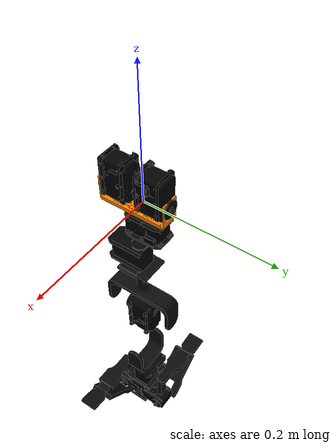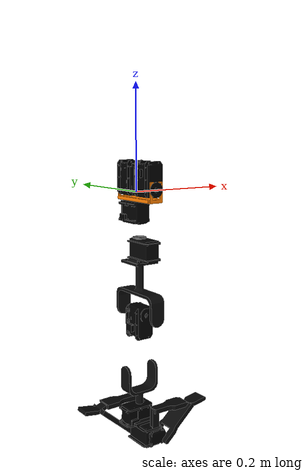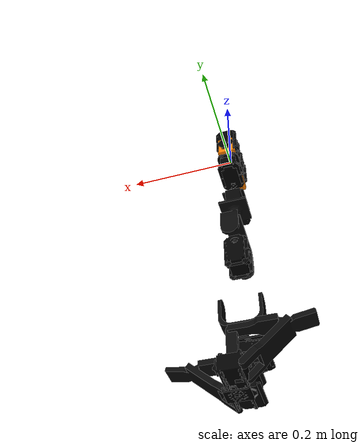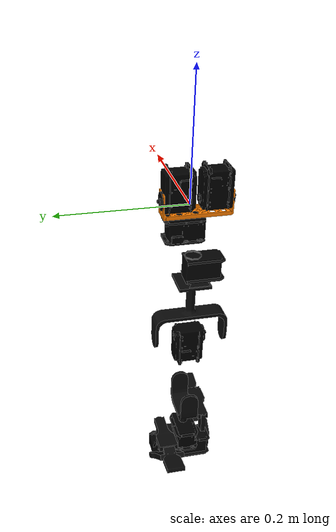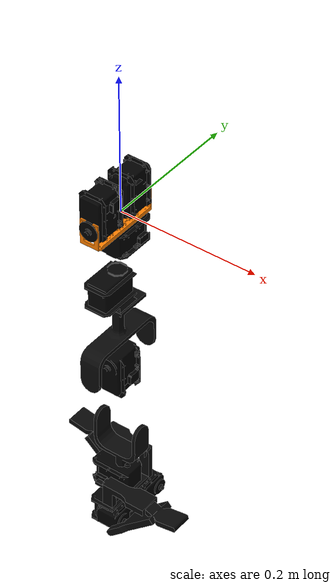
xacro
<?xml version="1.0"?>
<robot name="justina_right_arm" xmlns:xacro="http://www.ros.org/wiki/xacro">
  <!--xacro:include filename="$(find justina_description)/urdf/justina/components/justina_right_arm.gazebo"/-->

  <!-- RIGHT ARM LINKS -->
  <link name="shoulders_right_link">
    <visual>
      <origin xyz="0 -0.01 0.02" rpy = "0 3.1415 0"/>
      <geometry>
        <mesh filename="package://justina_description/meshes/justina/servos/Mx106-2.dae"/>
      </geometry>
    </visual>
    <collision>
      <origin xyz="0 -0.01 0.02" rpy = "0 3.1415 0"/>
      <geometry>
        <mesh filename="package://justina_description/meshes/justina/servos/Mx106-2.dae"/>
      </geometry>
    </collision>
    <inertial>
      <origin xyz="0 -0.01 0.02" rpy = "0 0 0"/>
      <mass value="0.125"/>
      <inertia
        ixx="0.0015" ixy="0.0" ixz="0.0"
        iyy="0.002175" iyz="0.0"
        izz="0.003075"/>
    </inertial>
  </link>

  <link name="shoulder_frame">
    <visual>
      <origin xyz="0 -0.01 0.01" rpy="0 0 -1.5707"/>
      <geometry>
       <mesh filename="package://justina_description/meshes/justina/arm/shoulder_frame.dae"/>
      </geometry>
      <material name = "la_material"><color rgba="1.0 0.5 0 1"/></material>
    </visual>
    <collision>
      <origin xyz="0 -0.01 0.01" rpy="0 0 -1.5707"/>
      <geometry>
       <mesh filename="package://justina_description/meshes/justina/arm/shoulder_frame.dae"/>
      </geometry>
    </collision>
    <inertial>
      <origin xyz="0 -0.01 0.01" rpy = "0 0 -1.5707"/>
      <mass value="0.08146"/>
      <inertia
        ixx="0.0000813217" ixy="0.0" ixz="0.0"
        iyy="0.000196" iyz="0.0"
        izz="0.0001282"/>
    </inertial>
  </link>

  <link name="arm">
    <visual>
      <origin xyz="0 0 -0.02" rpy="0 0 3.1416"/>
      <geometry>
       <mesh filename="package://justina_description/meshes/justina/servos/Mx64.dae"/>
      </geometry>
    </visual>
    <visual>
      <origin xyz="0 0 -0.216" rpy="0 3.1416 -1.5707"/>
      <geometry>
       <mesh filename="package://justina_description/meshes/justina/arm/arm.dae"/>
      </geometry>
    </visual>
    <collision>
      <origin xyz="0 0 -0.02" rpy="0 0 3.1416"/>
      <geometry>
       <mesh filename="package://justina_description/meshes/justina/servos/Mx64.dae"/>
      </geometry>
    </collision>
    <collision>
      <origin xyz="0 0 -0.216" rpy="0 3.1416 -1.5707"/>
      <geometry>
       <mesh filename="package://justina_description/meshes/justina/arm/arm.dae"/>
      </geometry>
    </collision>
    <inertial>
      <origin xyz="0 0 0" rpy = "0 0 0"/>
      <mass value="0.155"/>
      <inertia
        ixx="0.0015" ixy="0.0" ixz="0.0"
        iyy="0.002175" iyz="0.0"
        izz="0.003075"/>
    </inertial>
  </link>

  <link name="forearm">
    <visual>
      <origin xyz="0 0 0" rpy="1.5707 0 0"/>
      <geometry>
       <mesh filename="package://justina_description/meshes/justina/servos/Mx106.dae"/>
      </geometry>
    </visual>
    <visual>
      <origin xyz="0 0 -0.12" rpy="0 0 1.5707"/>
      <geometry>
       <mesh filename="package://justina_description/meshes/justina/arm/forearm.dae"/>
      </geometry>
    </visual>
    <visual>
      <origin xyz="0.009 0.001 -0.21" rpy="0 0 -1.5707"/>
      <geometry>
       <mesh filename="package://justina_description/meshes/justina/servos/Mx64.dae"/>
      </geometry>
    </visual>
    <collision>
      <origin xyz="0 0 0" rpy="0 0 0"/>
      <geometry>
       <mesh filename="package://justina_description/meshes/justina/servos/Mx106.dae"/>
      </geometry>
    </collision>
    <collision>
      <origin xyz="0 0 -0.12" rpy="0 0 1.5707"/>
      <geometry>
       <mesh filename="package://justina_description/meshes/justina/arm/forearm.dae"/>
      </geometry>
    </collision>
    <collision>
      <origin xyz="0.009 0.001 -0.21" rpy="0 0 -1.5707"/>
      <geometry>
       <mesh filename="package://justina_description/meshes/justina/servos/Mx64.dae"/>
      </geometry>
    </collision>
    <inertial>
      <origin xyz="0 0 0" rpy = "0 0 0"/>
      <mass value="0.155"/>
      <inertia
        ixx="0.0015" ixy="0.0" ixz="0.0"
        iyy="0.002175" iyz="0.0"
        izz="0.003075"/>
    </inertial>
  </link>

  <link name="gripper_motors">
    <visual>
      <origin xyz="0 -0.004 0" rpy="1.5707 -1.5707 0"/>
      <geometry>
        <mesh filename="package://justina_description/meshes/justina/servos/Mx28-2.dae"/>
      </geometry>
    </visual>
    <collision>
      <origin xyz="0 -0.004 0" rpy="1.5707 -1.5707 0"/>
      <geometry>
        <mesh filename="package://justina_description/meshes/justina/servos/Mx28-2.dae"/>
      </geometry>
    </collision>
    <inertial>
      <origin xyz="0 0 0" rpy = "0 0 0"/>
      <mass value="0.155"/>
      <inertia
        ixx="0.0015" ixy="0.0" ixz="0.0"
        iyy="0.002175" iyz="0.0"
        izz="0.003075"/>
    </inertial>
  </link>

    <link name="right_jaw">
    <visual>
      <origin xyz="0 0 0" rpy="0 1.5707 3.1416"/>
      <geometry>
        <mesh filename="package://justina_description/meshes/justina/arm/gripper.dae"/>
      </geometry>
    </visual>
    <collision>
      <origin xyz="0 0 0" rpy="0 1.5707 3.1416"/>
      <geometry>
        <mesh filename="package://justina_description/meshes/justina/arm/gripper.dae"/>
      </geometry>
    </collision>
    <inertial>
      <origin xyz="0 0 0" rpy = "0 0 0"/>
      <mass value="0.155"/>
      <inertia
        ixx="0.0015" ixy="0.0" ixz="0.0"
        iyy="0.002175" iyz="0.0"
        izz="0.003075"/>
    </inertial>
  </link>

    <link name="left_jaw">
    <visual>
      <origin xyz="0 0 0" rpy="0 1.5707 0"/>
      <geometry>
        <mesh filename="package://justina_description/meshes/justina/arm/gripper.dae"/>
      </geometry>
    </visual>
    <collision>
      <origin xyz="0 0 0" rpy="0 0 0"/>
      <geometry>
        <mesh filename="package://justina_description/meshes/justina/arm/gripper.dae"/>
      </geometry>
    </collision>
    <inertial>
      <origin xyz="0 0 0" rpy = "0 0 0"/>
      <mass value="0.155"/>
      <inertia
        ixx="0.0015" ixy="0.0" ixz="0.0"
        iyy="0.002175" iyz="0.0"
        izz="0.003075"/>
    </inertial>
  </link>

  <link name="right_arm_grip"/>

  <!-- RIGHT ARM JOINTS -->
  <joint name="torso_shoulder" type="revolute">
    <origin xyz="0 0 0.01" rpy="0 0 0"/>
    <parent link="shoulders_right_link"/>
    <child link="shoulder_frame"/>
    <axis xyz="0 -1 0" />
    <dynamics damping ="0.1" />
    <limit effort="16.0" velocity="3.0" lower="-1.7" upper="1.7"/>
  </joint>

  <joint name="shoulder_arm_motor" type="revolute">
    <origin xyz="0 -0.009 -0.028" rpy="0 0 0"/>
    <parent link="shoulder_frame"/>
    <child link="arm"/>
    <axis xyz="0 0 -1" />
    <dynamics damping ="0.1" />
    <limit effort="16.0" velocity="3.0" lower="-1.7" upper="1.7"/>
  </joint>

  <joint name="elbow" type="revolute">
    <origin xyz="0 0.002 -0.216" rpy="0 0 0"/>
    <parent link="arm"/>
    <child link="forearm"/>
    <axis xyz="0 -1 0" />
    <dynamics damping ="0.1" />
    <limit effort="16.0" velocity="3.0" lower="-1.7" upper="1.7"/>
  </joint>

  <joint name="wrist" type="revolute">
    <origin xyz="0.009 0.001 -0.25" rpy="0 0 0"/>
    <parent link="forearm"/>
    <child link="gripper_motors"/>
    <axis xyz="0 0 -1" />
    <dynamics damping ="0.1" />
    <limit effort="16.0" velocity="3.0" lower="-1.7" upper="1.7"/>
  </joint>

  <joint name="right_jaw_joint" type="revolute">
    <origin xyz="0 -0.04 0" rpy="0 0 0"/>
    <parent link="gripper_motors"/>
    <child link="right_jaw"/>
    <axis xyz="-1 0 0" />
    <dynamics damping ="0.1" />
    <limit effort="16.0" velocity="3.0" lower="-1.7" upper="1.7"/>
  </joint>

  <joint name="left_jaw_joint" type="revolute">
    <origin xyz="0 0.04 0" rpy="0 0 0"/>
    <parent link="gripper_motors"/>
    <child link="left_jaw"/>
    <axis xyz="-1 0 0" />
    <dynamics damping ="0.1" />
    <limit effort="16.0" velocity="3.0" lower="-1.7" upper="1.7"/>
  </joint>

  <joint name="right_grip_center_joint" type="fixed">
    <origin xyz="0 0 -0.12" rpy="0 0 0"/>
    <parent link="gripper_motors"/>
    <child link="right_arm_grip"/>
  </joint>
</robot>
